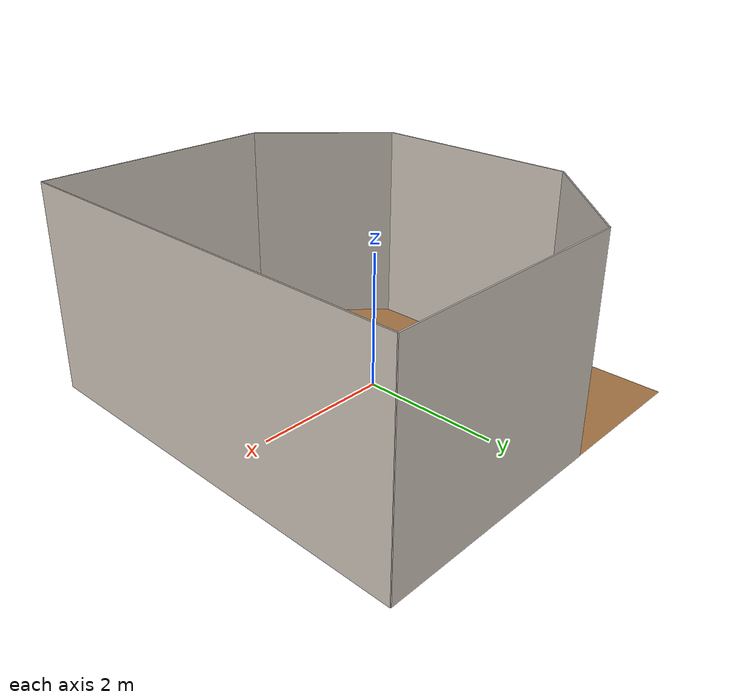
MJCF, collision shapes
<mujoco model="table_arena">
  <asset>
    <texture builtin="gradient" height="256" rgb1=".9 .9 1." rgb2=".2 .3 .4" type="skybox" width="256"/>
    <texture file="../textures/seamless_wood_planks_floor.png" type="2d" name="texplane"/>
    <material name="floorplane" reflectance="0.0" shininess="0.0"
	      specular="0.0" texrepeat="3 3" texture="texplane" texuniform="true"/>
    <!-- ceramic table texture and material-->
    <texture file="../textures/martin_novak_wood_table.png" type="cube" name="tex-table"/>
    <material name="table_texture" reflectance="0.0" shininess="0.0" specular="0.2" texrepeat="1 1" texture="tex-table" />
    <!-- steel legs -->
    <texture file="../textures/martin_novak_wood_table.png" type="cube" name="tex-table-legs"/>
    <material name="table_legs" reflectance="0.8" shininess="0.8" texrepeat="1 1" texture="tex-table-legs" />
    <!-- linen wall texture walls -->
    <texture file="../textures/linen_wall_texture.png" type="2d" name="tex-wall"/>

    <material name="walls_mat" reflectance="0.0" shininess="0.1" specular="0.8" texrepeat="3 3" texture="tex-wall" texuniform="true" />
    <!-- added table texture and material for domain randomization -->
    <texture  name="textable" builtin="flat" height="512" width="512" rgb1="0.5 0.5 0.5" rgb2="0.5 0.5 0.5"/>
    <material name="table_mat" texture="textable" />

    <texture file="coffee_table_seats/FabricLeatherBuffaloRustic001_COL_VAR1_4K.png" name="tex-coffee_table_seats" type="2d"/>
    <material name="coffee_table_seats" reflectance="0.5" texrepeat="1 1" texture="tex-coffee_table_seats" texuniform="false"/>
    <mesh file="coffee_table_seats/visual/coffee_table_seats_vis.msh" name="coffee_table_seats_vis" scale="1.0 1.0 1.0"/>

    <texture file="short_coffee_table/Marble062_COL_4K.png" name="tex-short_coffee_table" type="2d"/>
    <material name="short_coffee_table" reflectance="0.5" texrepeat="1 1" texture="tex-short_coffee_table" texuniform="false"/>
    <mesh file="short_coffee_table/visual/short_coffee_table_vis.msh" name="short_coffee_table_vis" scale="1.0 1.0 1.0"/>

    <texture file="wall_decoration/wall_decoration_texture.png" name="tex-wall_decoration" type="2d"/>
    <material name="wall_decoration" reflectance="0.5" texrepeat="1 1" texture="tex-wall_decoration" texuniform="false"/>
    <mesh file="wall_decoration/visual/wall_decoration_vis.msh" name="wall_decoration_vis" scale="0.4 0.1 0.4"/>

  </asset>
  <worldbody>
    <!-- Floor -->
    <body name="floor" pos="0 0 0">
      <geom condim="3" group="1" material="floorplane" name="floor" pos="0 0 0" size="3 3 .125" type="plane"/>
    </body>

    <geom pos="-1.0 0 1.5" quat="0.7071068 0 0 -0.7071068" type="mesh" mesh="wall_decoration_vis" conaffinity="0" contype="0" group="1" name="wall_decoration" material="wall_decoration"/>

    <body name="coffee_table" pos="0 0 0">
      <geom solimp="0.998 0.998 0.001" solref="0.001 1" density="100" friction="0.95 0.3 0.1" type="mesh" mesh="short_coffee_table_vis" conaffinity="0" contype="0" group="1" material="short_coffee_table"/>
      <geom pos="0.0 0.06 0.41" size="0.35 0.8 0.014" type="box" group="0" name="coffee_table_collision" friction="1 0.005 0.0001"/>
      <geom solimp="0.998 0.998 0.001" solref="0.001 1" density="100" friction="0.95 0.3 0.1" type="mesh" mesh="coffee_table_seats_vis" conaffinity="0" contype="0" group="1" material="coffee_table_seats"/>
    </body>

    <geom pos="-1.25 2.25 1.5" quat="0.6532815 0.6532815 0.2705981 0.2705981" size="1.06 1.5 0.01" type="box" conaffinity="0" contype="0" group="1" name="wall_leftcorner_visual" material="walls_mat"/>
    <geom pos="-1.25 -2.25 1.5" quat="0.6532815 0.6532815 -0.2705981 -0.2705981" size="1.06 1.5 0.01" type="box" conaffinity="0" contype="0" group="1" name="wall_rightcorner_visual" material="walls_mat"/>
    <geom pos="1.25 3 1.5" quat="0.7071 0.7071 0 0" size="1.75 1.5 0.01" type="box" conaffinity="0" contype="0" group="1" name="wall_left_visual" material="walls_mat"/>
    <geom pos="1.25 -3 1.5" quat="0.7071 -0.7071 0 0" size="1.75 1.5 0.01" type="box" conaffinity="0" contype="0" group="1" name="wall_right_visual" material="walls_mat"/>
    <geom pos="-2 0 1.5" quat="0.5 0.5 0.5 0.5" size="1.5 1.5 0.01" type="box" conaffinity="0" contype="0" group="1" name="wall_rear_visual" material="walls_mat"/>
    <geom pos="3 0 1.5" quat="0.5 0.5 -0.5 -0.5" size="3 1.5 0.01" type="box" conaffinity="0" contype="0" group="1" name="wall_front_visual" material="walls_mat"/>
    <!-- Table body -->
    <light name="light1" diffuse=".8 .8 .8" dir="0 -.15 -1" directional="false" pos="1 1 4.0" specular="0.3 0.3 0.3" castshadow="false"/>
    <light name="light2" diffuse=".8 .8 .8" dir="0 -.15 -1" directional="false" pos="-3. -3. 4.0" specular="0.3 0.3 0.3" castshadow="false"/>

    <!-- front view -->
    <camera mode="fixed" name="frontview" pos="1.0 0 1.45" quat="0.56 0.43 0.43 0.56"/>
    <!-- bird view -->
    <camera mode="fixed" name="birdview" pos="-0.2 0 3.0" quat="0.7071 0 0 0.7071"/>
    <!-- agent view -->
    <camera mode="fixed" name="agentview" pos="0.5 0 1.35" quat="0.653 0.271 0.271 0.653"/>
    <camera mode="fixed" name="agentview_30" pos="1.299 0.75 0.9" quat="0.3966 0.3045 0.5274 0.6869"/>
    <camera mode="fixed" name="agentview_60" pos="0.75 1.299 0.9" quat="0.2053 0.1576 0.5883 0.7661"/>
    <camera mode="fixed" name="agentview_330" pos="1.299 -0.75 0.9" quat="0.6869 0.5274 0.3045 0.3966"/>
    <camera mode="fixed" name="agentview_300" pos="0.75 -1.299 0.9" quat="0.7661 0.5883 0.1576 0.2053"/>
    <camera mode="fixed" name="agentview_120" pos="-0.75 1.299 0.9" quat="-0.2053 -0.1576 0.5883 0.7661"/>
    <camera mode="fixed" name="agentview_240" pos="-0.75 -1.299 0.9" quat="0.7661 0.5883 -0.1576 -0.2053"/>
    <camera mode="fixed" name="agentview_180" pos="-1.5 0.0 0.9" quat="-0.5608 -0.4306 0.4306 0.5608"/>
    <camera mode="fixed" name="agentview_90" pos="-0.75 -1.299 0.9" quat="0.7661 0.5883 -0.1576 -0.2053"/>
    <camera mode="fixed" name="agentview_270" pos="-1.5 0.0 0.9" quat="-0.5608 -0.4306 0.4306 0.5608"/>
    <camera mode="fixed" name="agentview_15" pos="1.299 0.75 0.9" quat="0.3966 0.3045 0.5274 0.6869"/>
    <camera mode="fixed" name="agentview_45" pos="1.299 0.75 0.9" quat="0.3966 0.3045 0.5274 0.6869"/>
    <camera mode="fixed" name="agentview_75" pos="1.299 0.75 0.9" quat="0.3966 0.3045 0.5274 0.6869"/>
    <camera mode="fixed" name="agentview_105" pos="1.299 0.75 0.9" quat="0.3966 0.3045 0.5274 0.6869"/>
    <camera mode="fixed" name="agentview_135" pos="1.299 0.75 0.9" quat="0.3966 0.3045 0.5274 0.6869"/>
    <camera mode="fixed" name="agentview_285" pos="1.299 0.75 0.9" quat="0.3966 0.3045 0.5274 0.6869"/>
    <camera mode="fixed" name="agentview_255" pos="1.299 0.75 0.9" quat="0.3966 0.3045 0.5274 0.6869"/>
    <camera mode="fixed" name="agentview_225" pos="1.299 0.75 0.9" quat="0.3966 0.3045 0.5274 0.6869"/>
    <camera mode="fixed" name="agentview_315" pos="1.299 0.75 0.9" quat="0.3966 0.3045 0.5274 0.6869"/>
    <camera mode="fixed" name="agentview_345" pos="1.299 0.75 0.9" quat="0.3966 0.3045 0.5274 0.6869"/>

    <camera mode="fixed" name="agentview_up_15_30" pos="1.299 0.75 0.9" quat="0.3966 0.3045 0.5274 0.6869"/>
    <camera mode="fixed" name="agentview_up_15_60" pos="0.75 1.299 0.9" quat="0.2053 0.1576 0.5883 0.7661"/>
    <camera mode="fixed" name="agentview_up_15_330" pos="1.299 -0.75 0.9" quat="0.6869 0.5274 0.3045 0.3966"/>
    <camera mode="fixed" name="agentview_up_15_300" pos="0.75 -1.299 0.9" quat="0.7661 0.5883 0.1576 0.2053"/>
    <camera mode="fixed" name="agentview_up_15_120" pos="-0.75 1.299 0.9" quat="-0.2053 -0.1576 0.5883 0.7661"/>
    <camera mode="fixed" name="agentview_up_15_240" pos="-0.75 -1.299 0.9" quat="0.7661 0.5883 -0.1576 -0.2053"/>
    <camera mode="fixed" name="agentview_up_15_180" pos="-1.5 0.0 0.9" quat="-0.5608 -0.4306 0.4306 0.5608"/>
    <camera mode="fixed" name="agentview_up_30_30" pos="1.299 0.75 0.9" quat="0.3966 0.3045 0.5274 0.6869"/>
    <camera mode="fixed" name="agentview_up_30_60" pos="0.75 1.299 0.9" quat="0.2053 0.1576 0.5883 0.7661"/>
    <camera mode="fixed" name="agentview_up_30_330" pos="1.299 -0.75 0.9" quat="0.6869 0.5274 0.3045 0.3966"/>
    <camera mode="fixed" name="agentview_up_30_300" pos="0.75 -1.299 0.9" quat="0.7661 0.5883 0.1576 0.2053"/>
    <camera mode="fixed" name="agentview_up_30_120" pos="-0.75 1.299 0.9" quat="-0.2053 -0.1576 0.5883 0.7661"/>
    <camera mode="fixed" name="agentview_up_30_240" pos="-0.75 -1.299 0.9" quat="0.7661 0.5883 -0.1576 -0.2053"/>
    <camera mode="fixed" name="agentview_up_30_180" pos="-1.5 0.0 0.9" quat="-0.5608 -0.4306 0.4306 0.5608"/>
    <camera mode="fixed" name="agentview_up_345_30" pos="1.299 0.75 0.9" quat="0.3966 0.3045 0.5274 0.6869"/>
    <camera mode="fixed" name="agentview_up_345_60" pos="0.75 1.299 0.9" quat="0.2053 0.1576 0.5883 0.7661"/>
    <camera mode="fixed" name="agentview_up_345_330" pos="1.299 -0.75 0.9" quat="0.6869 0.5274 0.3045 0.3966"/>
    <camera mode="fixed" name="agentview_up_345_300" pos="0.75 -1.299 0.9" quat="0.7661 0.5883 0.1576 0.2053"/>
    <camera mode="fixed" name="agentview_up_345_120" pos="-0.75 1.299 0.9" quat="-0.2053 -0.1576 0.5883 0.7661"/>
    <camera mode="fixed" name="agentview_up_345_240" pos="-0.75 -1.299 0.9" quat="0.7661 0.5883 -0.1576 -0.2053"/>
    <camera mode="fixed" name="agentview_up_345_180" pos="-1.5 0.0 0.9" quat="-0.5608 -0.4306 0.4306 0.5608"/>
    <camera mode="fixed" name="agentview_up_15" pos="0.5 0 1.35" quat="0.653 0.271 0.271 0.653"/>
    <camera mode="fixed" name="agentview_up_30" pos="0.5 0 1.35" quat="0.653 0.271 0.271 0.653"/>
    <camera mode="fixed" name="agentview_up_345" pos="0.5 0 1.35" quat="0.653 0.271 0.271 0.653"/>

    <!-- side view -->
    <camera mode="fixed" name="sideview" pos="-0.05651774593317116 1.2761224129427358 1.4879572214102434" quat="0.009905065491771751 0.006877963156909582 0.5912228352893879 0.806418094001364" />
  </worldbody>
</mujoco>
